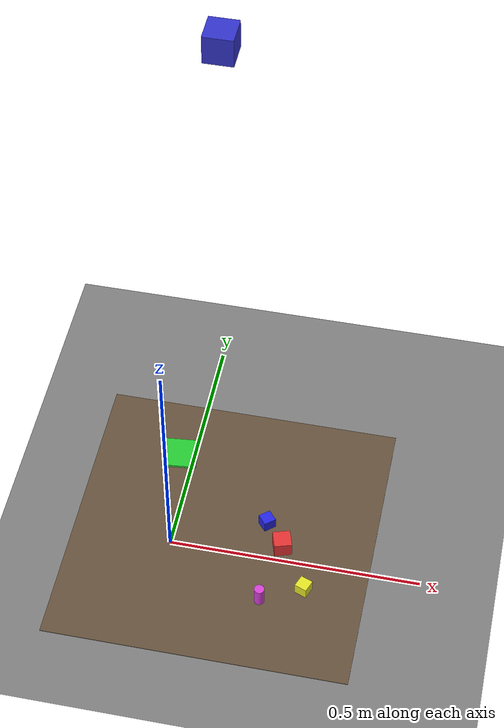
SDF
<?xml version="1.0" ?>

<sdf version="1.9">

  <world name="domain_randomized">

    <physics name="1ms" type="ode">
      <max_step_size>0.001</max_step_size>
      <real_time_factor>1</real_time_factor>
      <real_time_update_rate>1000</real_time_update_rate>
    </physics>

    <plugin
      filename="gz-sim-physics-system"
      name="gz::sim::systems::Physics"/>

    <plugin
      filename="gz-sim-user-commands-system"
      name="gz::sim::systems::UserCommands"/>

    <plugin
      filename="gz-sim-scene-broadcaster-system"
      name="gz::sim::systems::SceneBroadcaster"/>

    <plugin
      filename="gz-sim-sensors-system"
      name="gz::sim::systems::Sensors">
      <render_engine>ogre2</render_engine>
    </plugin>

    <!-- RANDOMIZED lighting: varied intensity and direction        -->

    <light type="directional" name="sun">
      <cast_shadows>true</cast_shadows>
      <pose>0 0 10 0 0 0</pose>
      <diffuse>0.7 0.7 0.7 1</diffuse>
      <specular>0.3 0.3 0.3 1</specular>
      <direction>-0.3 0.7 -1</direction>
    </light>

    <light type="point" name="fill_light">
      <cast_shadows>false</cast_shadows>
      <pose>0.5 -0.5 1.5 0 0 0</pose>
      <diffuse>0.3 0.3 0.25 1</diffuse>
      <attenuation>
        <range>5.0</range>
        <constant>0.5</constant>
        <linear>0.3</linear>
        <quadratic>0.1</quadratic>
      </attenuation>
    </light>

    <!-- Ground plane with textured surface                         -->

    <model name="ground_plane">
      <static>true</static>

      <link name="link">
        <collision name="collision">
          <geometry>
            <plane>
              <normal>0 0 1</normal>
              <size>20 20</size>
            </plane>
          </geometry>
        </collision>

        <visual name="visual">
          <geometry>
            <plane>
              <normal>0 0 1</normal>
              <size>20 20</size>
            </plane>
          </geometry>
          <material>
            <ambient>0.45 0.45 0.45 1</ambient>
            <diffuse>0.5 0.5 0.5 1</diffuse>
          </material>
        </visual>
      </link>
    </model>

    <!-- RANDOMIZED pick object: varied color, size, pose           -->
    <!-- (in production, use a script to randomize these per episode)-->

    <model name="pick_object">
      <static>false</static>
      <pose>0.22 0.03 0.015 0 0 0.3</pose>

      <link name="link">
        <inertial>
          <mass>0.025</mass>
          <inertia>
            <ixx>1.2e-5</ixx>
            <ixy>0</ixy>
            <ixz>0</ixz>
            <iyy>1.2e-5</iyy>
            <iyz>0</iyz>
            <izz>1.2e-5</izz>
          </inertia>
        </inertial>

        <collision name="collision">
          <geometry>
            <box>
              <size>0.035 0.035 0.035</size>
            </box>
          </geometry>
          <surface>
            <friction>
              <ode>
                <mu>1.2</mu>
                <mu2>1.2</mu2>
              </ode>
            </friction>
          </surface>
        </collision>

        <visual name="visual">
          <geometry>
            <box>
              <size>0.035 0.035 0.035</size>
            </box>
          </geometry>
          <material>
            <ambient>0.85 0.15 0.15 1</ambient>
            <diffuse>0.9 0.2 0.2 1</diffuse>
            <specular>0.2 0.2 0.2 1</specular>
          </material>
        </visual>
      </link>
    </model>

    <!-- RANDOMIZED place target: varied position and color         -->

    <model name="place_target">
      <static>true</static>
      <pose>-0.03 0.22 0.0025 0 0 0.1</pose>

      <link name="link">
        <collision name="collision">
          <geometry>
            <box>
              <size>0.07 0.07 0.005</size>
            </box>
          </geometry>
        </collision>

        <visual name="visual">
          <geometry>
            <box>
              <size>0.07 0.07 0.005</size>
            </box>
          </geometry>
          <material>
            <ambient>0.1 0.75 0.15 1</ambient>
            <diffuse>0.15 0.8 0.2 1</diffuse>
            <specular>0.1 0.1 0.1 1</specular>
          </material>
        </visual>
      </link>
    </model>

    <!-- Clutter objects for domain randomization training           -->

    <model name="distractor_cube_1">
      <static>false</static>
      <pose>0.18 0.08 0.012 0 0 0.7</pose>
      <link name="link">
        <inertial><mass>0.018</mass><inertia><ixx>8e-6</ixx><ixy>0</ixy><ixz>0</ixz><iyy>8e-6</iyy><iyz>0</iyz><izz>8e-6</izz></inertia></inertial>
        <collision name="collision"><geometry><box><size>0.025 0.025 0.025</size></box></geometry></collision>
        <visual name="visual"><geometry><box><size>0.025 0.025 0.025</size></box></geometry>
          <material><ambient>0.1 0.1 0.85 1</ambient><diffuse>0.15 0.15 0.9 1</diffuse></material>
        </visual>
      </link>
    </model>

    <model name="distractor_cube_2">
      <static>false</static>
      <pose>0.28 -0.06 0.012 0 0 1.2</pose>
      <link name="link">
        <inertial><mass>0.018</mass><inertia><ixx>8e-6</ixx><ixy>0</ixy><ixz>0</ixz><iyy>8e-6</iyy><iyz>0</iyz><izz>8e-6</izz></inertia></inertial>
        <collision name="collision"><geometry><box><size>0.025 0.025 0.025</size></box></geometry></collision>
        <visual name="visual"><geometry><box><size>0.025 0.025 0.025</size></box></geometry>
          <material><ambient>0.85 0.85 0.1 1</ambient><diffuse>0.9 0.9 0.15 1</diffuse></material>
        </visual>
      </link>
    </model>

    <model name="distractor_cylinder">
      <static>false</static>
      <pose>0.2 -0.1 0.02 0 0 0</pose>
      <link name="link">
        <inertial><mass>0.012</mass><inertia><ixx>4e-6</ixx><ixy>0</ixy><ixz>0</ixz><iyy>4e-6</iyy><iyz>0</iyz><izz>4e-6</izz></inertia></inertial>
        <collision name="collision"><geometry><cylinder><radius>0.01</radius><length>0.04</length></cylinder></geometry></collision>
        <visual name="visual"><geometry><cylinder><radius>0.01</radius><length>0.04</length></cylinder></geometry>
          <material><ambient>0.8 0.2 0.8 1</ambient><diffuse>0.85 0.25 0.85 1</diffuse></material>
        </visual>
      </link>
    </model>

    <!-- Table / workspace surface with randomized texture          -->

    <model name="workspace_table">
      <static>true</static>
      <pose>0.1 0.05 -0.02 0 0 0</pose>
      <link name="link">
        <collision name="collision">
          <geometry><box><size>0.6 0.6 0.04</size></box></geometry>
        </collision>
        <visual name="visual">
          <geometry><box><size>0.6 0.6 0.04</size></box></geometry>
          <material>
            <ambient>0.35 0.28 0.2 1</ambient>
            <diffuse>0.4 0.32 0.24 1</diffuse>
          </material>
        </visual>
      </link>
    </model>

    <!-- RGB-D Camera (depth + color)                                -->

    <model name="overhead_camera">
      <static>true</static>
      <pose>0.1 0.1 1.2 0 0 0</pose>

      <link name="link">
        <visual name="visual">
          <geometry><box><size>0.05 0.05 0.05</size></box></geometry>
          <material><ambient>0.2 0.2 0.8 1</ambient><diffuse>0.2 0.2 0.8 1</diffuse></material>
        </visual>

        <sensor name="camera" type="camera">
          <always_on>1</always_on>
          <update_rate>30</update_rate>
          <topic>image</topic>
          <camera>
            <horizontal_fov>1.047</horizontal_fov>
            <image><width>640</width><height>480</height><format>R8G8B8</format></image>
            <clip><near>0.1</near><far>100</far></clip>
          </camera>
        </sensor>

        <sensor name="depth_camera" type="depth_camera">
          <always_on>1</always_on>
          <update_rate>30</update_rate>
          <topic>depth/image</topic>
          <camera>
            <horizontal_fov>1.047</horizontal_fov>
            <image><width>640</width><height>480</height><format>R_FLOAT32</format></image>
            <clip><near>0.1</near><far>10.0</far></clip>
          </camera>
        </sensor>
      </link>
    </model>

  </world>

</sdf>
